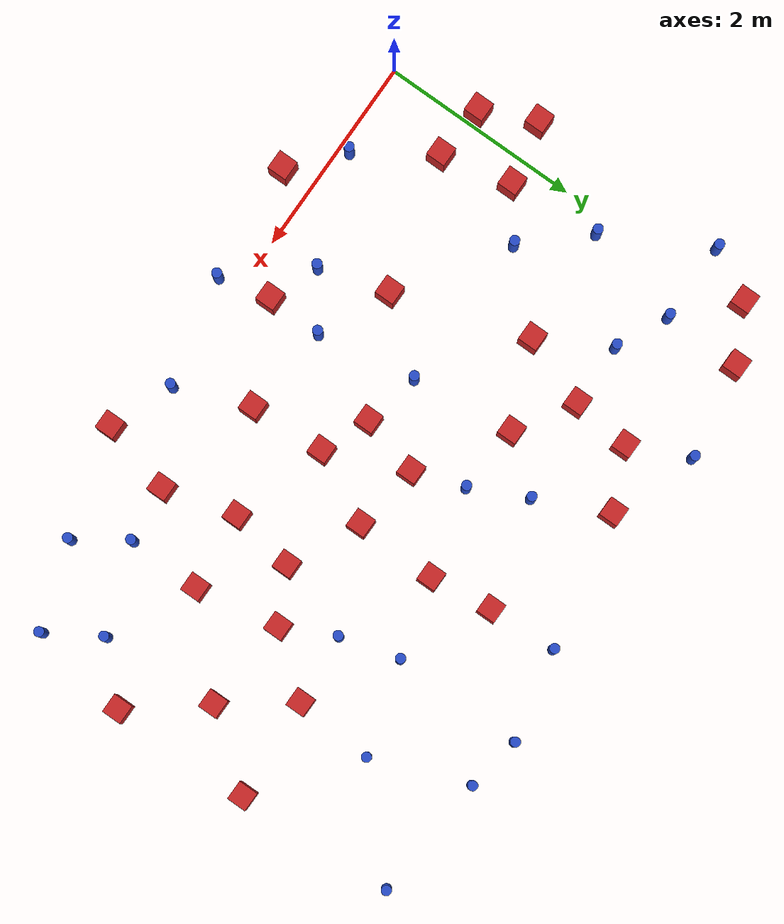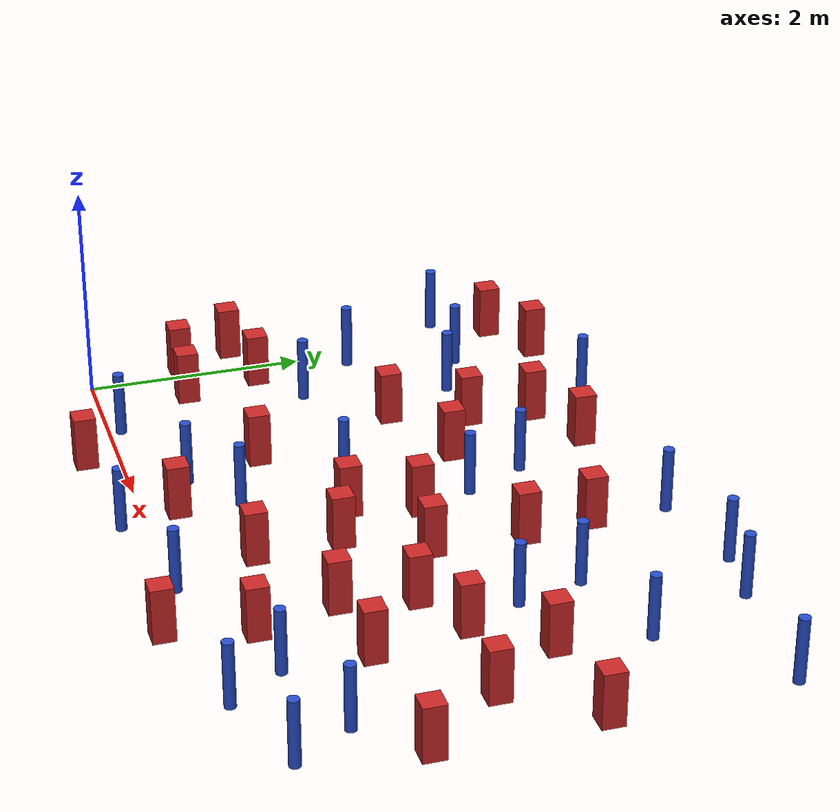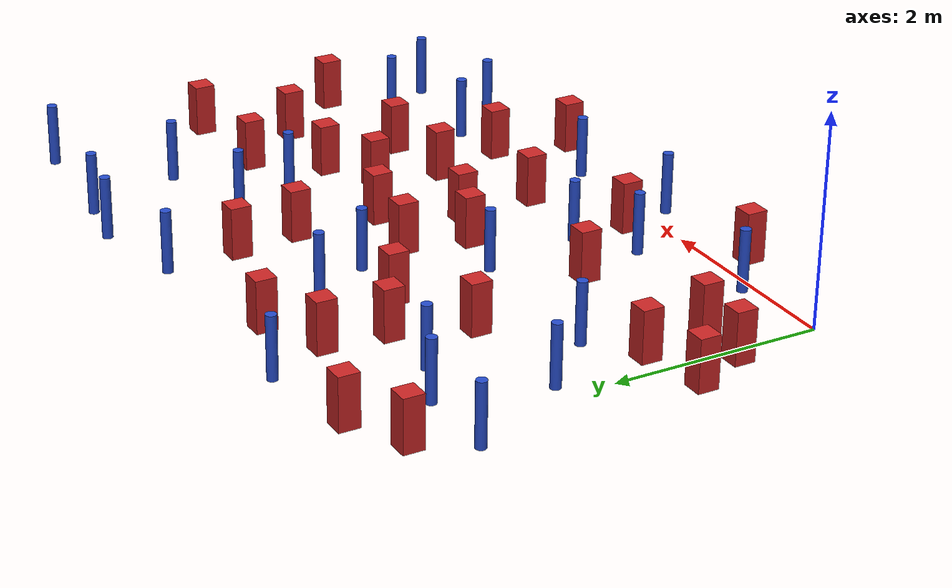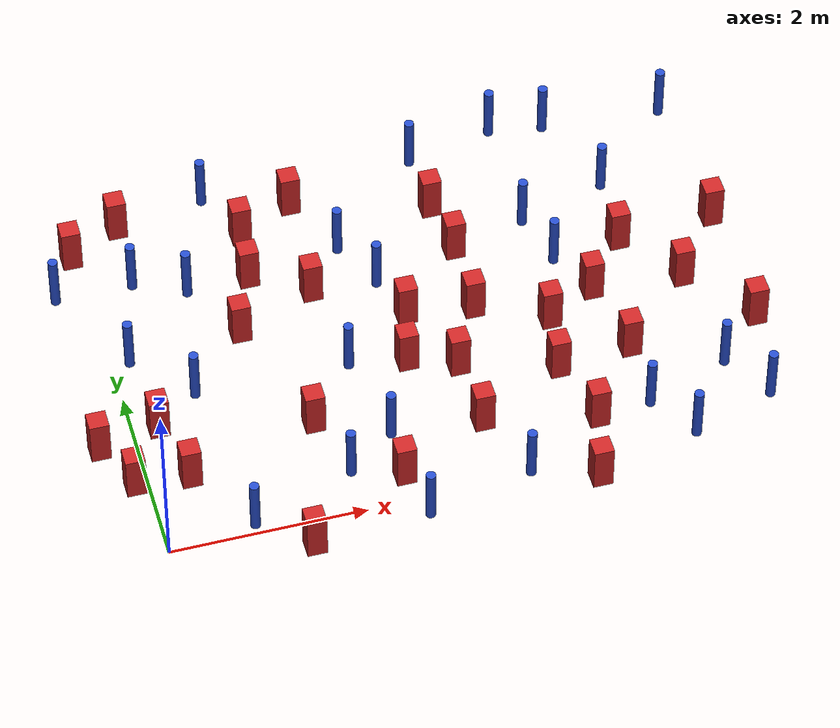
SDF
<sdf version="1.6">
 <model name="dense_4">
  <model name="pole_obstacle5">
   <static>true</static>
   <pose>4.51118579981 3.26232769423 2.88873142074e-08 -9.90536690245e-09 4.6021994898e-07 -1.20965994966e-07</pose>
   <link name="link">
    <pose>0 0 0.3 0 -0 0</pose>
    <inertial>
     <mass>1</mass>
     <inertia><ixx>0.145833</ixx><ixy>0</ixy><ixz>0</ixz><iyy>0.145833</iyy><iyz>0</iyz><izz>0.125</izz></inertia>
    </inertial>
    <collision name="collision">
     <geometry><cylinder><radius>0.05</radius><length>.6</length></cylinder></geometry>
    </collision>
    <visual name="visual">
     <geometry><cylinder><radius>0.05</radius><length>.6</length></cylinder></geometry>
     <material>
      <script><name>Gazebo/Blue</name><uri>file://media/materials/scripts/gazebo.material</uri></script>
     </material>
    </visual>
   </link>
  </model>
  <model name="square_post_obstacle20">
   <static>true</static>
   <pose>5.0686060429 1.31491274557 8.22691968438e-08 7.2212513382e-06 -7.54495500217e-07 2.29674213826e-05</pose>
   <link name="link">
    <pose>0 0 0.25 0 -0 0</pose>
    <inertial>
     <mass>100</mass>
     <inertia>
      <ixx>0.166667</ixx>
      <ixy>0</ixy>
      <ixz>0</ixz>
      <iyy>0.166667</iyy>
      <iyz>0</iyz>
      <izz>0.166667</izz>
     </inertia>
    </inertial>
    <collision name="collision"><geometry><box><size>.2 .2 .5</size></box></geometry></collision>
    <visual name="visual">
     <geometry><box><size>.2 .2 .5</size></box></geometry>
     <material>
      <script><name>Gazebo/Red</name><uri>file://media/materials/scripts/gazebo.material</uri></script>
     </material>
    </visual>
   </link>
  </model>
  <model name="square_post_obstacle23">
   <static>true</static>
   <pose>4.29525000992 -0.212206736863 8.22691968438e-08 7.2212513382e-06 -7.54495500217e-07 2.29674213826e-05</pose>
   <link name="link">
    <pose>0 0 0.25 0 -0 0</pose>
    <inertial>
     <mass>100</mass>
     <inertia>
      <ixx>0.166667</ixx>
      <ixy>0</ixy>
      <ixz>0</ixz>
      <iyy>0.166667</iyy>
      <iyz>0</iyz>
      <izz>0.166667</izz>
     </inertia>
    </inertial>
    <collision name="collision"><geometry><box><size>.2 .2 .5</size></box></geometry></collision>
    <visual name="visual">
     <geometry><box><size>.2 .2 .5</size></box></geometry>
     <material>
      <script><name>Gazebo/Red</name><uri>file://media/materials/scripts/gazebo.material</uri></script>
     </material>
    </visual>
   </link>
  </model>
  <model name="square_post_obstacle29">
   <static>true</static>
   <pose>2.2436271706 4.09614649173 8.22691968438e-08 7.22125133819e-06 -7.54495500217e-07 2.29674213826e-05</pose>
   <link name="link">
    <pose>0 0 0.25 0 -0 0</pose>
    <inertial>
     <mass>100</mass>
     <inertia>
      <ixx>0.166667</ixx>
      <ixy>0</ixy>
      <ixz>0</ixz>
      <iyy>0.166667</iyy>
      <iyz>0</iyz>
      <izz>0.166667</izz>
     </inertia>
    </inertial>
    <collision name="collision"><geometry><box><size>.2 .2 .5</size></box></geometry></collision>
    <visual name="visual">
     <geometry><box><size>.2 .2 .5</size></box></geometry>
     <material>
      <script><name>Gazebo/Red</name><uri>file://media/materials/scripts/gazebo.material</uri></script>
     </material>
    </visual>
   </link>
  </model>
  <model name="square_post_obstacle30">
   <static>true</static>
   <pose>5.85793373275 2.08116270976 8.22691968438e-08 7.2212513382e-06 -7.54495500217e-07 2.29674213826e-05</pose>
   <link name="link">
    <pose>0 0 0.25 0 -0 0</pose>
    <inertial>
     <mass>100</mass>
     <inertia>
      <ixx>0.166667</ixx>
      <ixy>0</ixy>
      <ixz>0</ixz>
      <iyy>0.166667</iyy>
      <iyz>0</iyz>
      <izz>0.166667</izz>
     </inertia>
    </inertial>
    <collision name="collision"><geometry><box><size>.2 .2 .5</size></box></geometry></collision>
    <visual name="visual">
     <geometry><box><size>.2 .2 .5</size></box></geometry>
     <material>
      <script><name>Gazebo/Red</name><uri>file://media/materials/scripts/gazebo.material</uri></script>
     </material>
    </visual>
   </link>
  </model>
  <model name="pole_obstacle26">
   <static>true</static>
   <pose>5.4399115924 3.53323720366 2.88873142074e-08 -9.90536690245e-09 4.6021994898e-07 -1.20965994966e-07</pose>
   <link name="link">
    <pose>0 0 0.3 0 -0 0</pose>
    <inertial>
     <mass>1</mass>
     <inertia><ixx>0.145833</ixx><ixy>0</ixy><ixz>0</ixz><iyy>0.145833</iyy><iyz>0</iyz><izz>0.125</izz></inertia>
    </inertial>
    <collision name="collision">
     <geometry><cylinder><radius>0.05</radius><length>.6</length></cylinder></geometry>
    </collision>
    <visual name="visual">
     <geometry><cylinder><radius>0.05</radius><length>.6</length></cylinder></geometry>
     <material>
      <script><name>Gazebo/Blue</name><uri>file://media/materials/scripts/gazebo.material</uri></script>
     </material>
    </visual>
   </link>
  </model>
  <model name="pole_obstacle30">
   <static>true</static>
   <pose>1.95869227212 0.501764290727 2.88873142074e-08 -9.90536691009e-09 4.60219948961e-07 -1.2096599498e-07</pose>
   <link name="link">
    <pose>0 0 0.3 0 -0 0</pose>
    <inertial>
     <mass>1</mass>
     <inertia><ixx>0.145833</ixx><ixy>0</ixy><ixz>0</ixz><iyy>0.145833</iyy><iyz>0</iyz><izz>0.125</izz></inertia>
    </inertial>
    <collision name="collision">
     <geometry><cylinder><radius>0.05</radius><length>.6</length></cylinder></geometry>
    </collision>
    <visual name="visual">
     <geometry><cylinder><radius>0.05</radius><length>.6</length></cylinder></geometry>
     <material>
      <script><name>Gazebo/Blue</name><uri>file://media/materials/scripts/gazebo.material</uri></script>
     </material>
    </visual>
   </link>
  </model>
  <model name="pole_obstacle44">
   <static>true</static>
   <pose>0.716116815549 1.88164839335 2.88873142074e-08 -9.90536689855e-09 4.60219948989e-07 -1.20965994962e-07</pose>
   <link name="link">
    <pose>0 0 0.3 0 -0 0</pose>
    <inertial>
     <mass>1</mass>
     <inertia><ixx>0.145833</ixx><ixy>0</ixy><ixz>0</ixz><iyy>0.145833</iyy><iyz>0</iyz><izz>0.125</izz></inertia>
    </inertial>
    <collision name="collision">
     <geometry><cylinder><radius>0.05</radius><length>.6</length></cylinder></geometry>
    </collision>
    <visual name="visual">
     <geometry><cylinder><radius>0.05</radius><length>.6</length></cylinder></geometry>
     <material>
      <script><name>Gazebo/Blue</name><uri>file://media/materials/scripts/gazebo.material</uri></script>
     </material>
    </visual>
   </link>
  </model>
  <model name="square_post_obstacle42">
   <static>true</static>
   <pose>3.63920087591 3.68147634943 8.22691968438e-08 7.2212513382e-06 -7.54495500217e-07 2.29674213826e-05</pose>
   <link name="link">
    <pose>0 0 0.25 0 -0 0</pose>
    <inertial>
     <mass>100</mass>
     <inertia>
      <ixx>0.166667</ixx>
      <ixy>0</ixy>
      <ixz>0</ixz>
      <iyy>0.166667</iyy>
      <iyz>0</iyz>
      <izz>0.166667</izz>
     </inertia>
    </inertial>
    <collision name="collision"><geometry><box><size>.2 .2 .5</size></box></geometry></collision>
    <visual name="visual">
     <geometry><box><size>.2 .2 .5</size></box></geometry>
     <material>
      <script><name>Gazebo/Red</name><uri>file://media/materials/scripts/gazebo.material</uri></script>
     </material>
    </visual>
   </link>
  </model>
  <model name="square_post_obstacle46">
   <static>true</static>
   <pose>4.48894644158 0.51475147384 8.22691968438e-08 7.2212513382e-06 -7.54495500217e-07 2.29674213826e-05</pose>
   <link name="link">
    <pose>0 0 0.25 0 -0 0</pose>
    <inertial>
     <mass>100</mass>
     <inertia>
      <ixx>0.166667</ixx>
      <ixy>0</ixy>
      <ixz>0</ixz>
      <iyy>0.166667</iyy>
      <iyz>0</iyz>
      <izz>0.166667</izz>
     </inertia>
    </inertial>
    <collision name="collision"><geometry><box><size>.2 .2 .5</size></box></geometry></collision>
    <visual name="visual">
     <geometry><box><size>.2 .2 .5</size></box></geometry>
     <material>
      <script><name>Gazebo/Red</name><uri>file://media/materials/scripts/gazebo.material</uri></script>
     </material>
    </visual>
   </link>
  </model>
  <model name="pole_obstacle52">
   <static>true</static>
   <pose>5.93323095157 0.895569848175 2.88873142074e-08 -9.90536689837e-09 4.60219948989e-07 -1.2096599496e-07</pose>
   <link name="link">
    <pose>0 0 0.3 0 -0 0</pose>
    <inertial>
     <mass>1</mass>
     <inertia><ixx>0.145833</ixx><ixy>0</ixy><ixz>0</ixz><iyy>0.145833</iyy><iyz>0</iyz><izz>0.125</izz></inertia>
    </inertial>
    <collision name="collision">
     <geometry><cylinder><radius>0.05</radius><length>.6</length></cylinder></geometry>
    </collision>
    <visual name="visual">
     <geometry><cylinder><radius>0.05</radius><length>.6</length></cylinder></geometry>
     <material>
      <script><name>Gazebo/Blue</name><uri>file://media/materials/scripts/gazebo.material</uri></script>
     </material>
    </visual>
   </link>
  </model>
  <model name="square_post_obstacle60">
   <static>true</static>
   <pose>3.37698838711 0.771752956563 8.22691968438e-08 7.2212513382e-06 -7.54495500217e-07 2.29674213826e-05</pose>
   <link name="link">
    <pose>0 0 0.25 0 -0 0</pose>
    <inertial>
     <mass>100</mass>
     <inertia>
      <ixx>0.166667</ixx>
      <ixy>0</ixy>
      <ixz>0</ixz>
      <iyy>0.166667</iyy>
      <iyz>0</iyz>
      <izz>0.166667</izz>
     </inertia>
    </inertial>
    <collision name="collision"><geometry><box><size>.2 .2 .5</size></box></geometry></collision>
    <visual name="visual">
     <geometry><box><size>.2 .2 .5</size></box></geometry>
     <material>
      <script><name>Gazebo/Red</name><uri>file://media/materials/scripts/gazebo.material</uri></script>
     </material>
    </visual>
   </link>
  </model>
  <model name="pole_obstacle56">
   <static>true</static>
   <pose>6.33768137172 4.39520166497 2.88873142074e-08 -9.90536690842e-09 4.60219948965e-07 -1.20965994976e-07</pose>
   <link name="link">
    <pose>0 0 0.3 0 -0 0</pose>
    <inertial>
     <mass>1</mass>
     <inertia><ixx>0.145833</ixx><ixy>0</ixy><ixz>0</ixz><iyy>0.145833</iyy><iyz>0</iyz><izz>0.125</izz></inertia>
    </inertial>
    <collision name="collision">
     <geometry><cylinder><radius>0.05</radius><length>.6</length></cylinder></geometry>
    </collision>
    <visual name="visual">
     <geometry><cylinder><radius>0.05</radius><length>.6</length></cylinder></geometry>
     <material>
      <script><name>Gazebo/Blue</name><uri>file://media/materials/scripts/gazebo.material</uri></script>
     </material>
    </visual>
   </link>
  </model>
  <model name="pole_obstacle58">
   <static>true</static>
   <pose>0.435146856572 3.46067337315 2.88873142074e-08 -9.90536689663e-09 4.60219948993e-07 -1.20965994959e-07</pose>
   <link name="link">
    <pose>0 0 0.3 0 -0 0</pose>
    <inertial>
     <mass>1</mass>
     <inertia><ixx>0.145833</ixx><ixy>0</ixy><ixz>0</ixz><iyy>0.145833</iyy><iyz>0</iyz><izz>0.125</izz></inertia>
    </inertial>
    <collision name="collision">
     <geometry><cylinder><radius>0.05</radius><length>.6</length></cylinder></geometry>
    </collision>
    <visual name="visual">
     <geometry><cylinder><radius>0.05</radius><length>.6</length></cylinder></geometry>
     <material>
      <script><name>Gazebo/Blue</name><uri>file://media/materials/scripts/gazebo.material</uri></script>
     </material>
    </visual>
   </link>
  </model>
  <model name="square_post_obstacle62">
   <static>true</static>
   <pose>-0.0900911200471 3.95353260176 8.22691968438e-08 7.2212513382e-06 -7.54495500217e-07 2.29674213826e-05</pose>
   <link name="link">
    <pose>0 0 0.25 0 -0 0</pose>
    <inertial>
     <mass>100</mass>
     <inertia>
      <ixx>0.166667</ixx>
      <ixy>0</ixy>
      <ixz>0</ixz>
      <iyy>0.166667</iyy>
      <iyz>0</iyz>
      <izz>0.166667</izz>
     </inertia>
    </inertial>
    <collision name="collision"><geometry><box><size>.2 .2 .5</size></box></geometry></collision>
    <visual name="visual">
     <geometry><box><size>.2 .2 .5</size></box></geometry>
     <material>
      <script><name>Gazebo/Red</name><uri>file://media/materials/scripts/gazebo.material</uri></script>
     </material>
    </visual>
   </link>
  </model>
  <model name="square_post_obstacle66">
   <static>true</static>
   <pose>4.40175291672 1.88520417831 8.22691968438e-08 7.2212513382e-06 -7.54495500217e-07 2.29674213826e-05</pose>
   <link name="link">
    <pose>0 0 0.25 0 -0 0</pose>
    <inertial>
     <mass>100</mass>
     <inertia>
      <ixx>0.166667</ixx>
      <ixy>0</ixy>
      <ixz>0</ixz>
      <iyy>0.166667</iyy>
      <iyz>0</iyz>
      <izz>0.166667</izz>
     </inertia>
    </inertial>
    <collision name="collision"><geometry><box><size>.2 .2 .5</size></box></geometry></collision>
    <visual name="visual">
     <geometry><box><size>.2 .2 .5</size></box></geometry>
     <material>
      <script><name>Gazebo/Red</name><uri>file://media/materials/scripts/gazebo.material</uri></script>
     </material>
    </visual>
   </link>
  </model>
  <model name="pole_obstacle65">
   <static>true</static>
   <pose>2.46362555093 0.867232318638 2.88873142074e-08 -9.90536689285e-09 4.60219949002e-07 -1.20965994953e-07</pose>
   <link name="link">
    <pose>0 0 0.3 0 -0 0</pose>
    <inertial>
     <mass>1</mass>
     <inertia><ixx>0.145833</ixx><ixy>0</ixy><ixz>0</ixz><iyy>0.145833</iyy><iyz>0</iyz><izz>0.125</izz></inertia>
    </inertial>
    <collision name="collision">
     <geometry><cylinder><radius>0.05</radius><length>.6</length></cylinder></geometry>
    </collision>
    <visual name="visual">
     <geometry><cylinder><radius>0.05</radius><length>.6</length></cylinder></geometry>
     <material>
      <script><name>Gazebo/Blue</name><uri>file://media/materials/scripts/gazebo.material</uri></script>
     </material>
    </visual>
   </link>
  </model>
  <model name="square_post_obstacle77">
   <static>true</static>
   <pose>2.16669444252 2.87737409979 8.22691968438e-08 7.2212513382e-06 -7.54495500217e-07 2.29674213826e-05</pose>
   <link name="link">
    <pose>0 0 0.25 0 -0 0</pose>
    <inertial>
     <mass>100</mass>
     <inertia>
      <ixx>0.166667</ixx>
      <ixy>0</ixy>
      <ixz>0</ixz>
      <iyy>0.166667</iyy>
      <iyz>0</iyz>
      <izz>0.166667</izz>
     </inertia>
    </inertial>
    <collision name="collision"><geometry><box><size>.2 .2 .5</size></box></geometry></collision>
    <visual name="visual">
     <geometry><box><size>.2 .2 .5</size></box></geometry>
     <material>
      <script><name>Gazebo/Red</name><uri>file://media/materials/scripts/gazebo.material</uri></script>
     </material>
    </visual>
   </link>
  </model>
  <model name="square_post_obstacle78">
   <static>true</static>
   <pose>3.33992693477 1.53138632967 8.22691968438e-08 7.2212513382e-06 -7.54495500217e-07 2.29674213826e-05</pose>
   <link name="link">
    <pose>0 0 0.25 0 -0 0</pose>
    <inertial>
     <mass>100</mass>
     <inertia>
      <ixx>0.166667</ixx>
      <ixy>0</ixy>
      <ixz>0</ixz>
      <iyy>0.166667</iyy>
      <iyz>0</iyz>
      <izz>0.166667</izz>
     </inertia>
    </inertial>
    <collision name="collision"><geometry><box><size>.2 .2 .5</size></box></geometry></collision>
    <visual name="visual">
     <geometry><box><size>.2 .2 .5</size></box></geometry>
     <material>
      <script><name>Gazebo/Red</name><uri>file://media/materials/scripts/gazebo.material</uri></script>
     </material>
    </visual>
   </link>
  </model>
  <model name="pole_obstacle92">
   <static>true</static>
   <pose>1.38772694952 4.41125062074 2.88873142074e-08 -9.90536689852e-09 4.60219948989e-07 -1.2096599496e-07</pose>
   <link name="link">
    <pose>0 0 0.3 0 -0 0</pose>
    <inertial>
     <mass>1</mass>
     <inertia><ixx>0.145833</ixx><ixy>0</ixy><ixz>0</ixz><iyy>0.145833</iyy><iyz>0</iyz><izz>0.125</izz></inertia>
    </inertial>
    <collision name="collision">
     <geometry><cylinder><radius>0.05</radius><length>.6</length></cylinder></geometry>
    </collision>
    <visual name="visual">
     <geometry><cylinder><radius>0.05</radius><length>.6</length></cylinder></geometry>
     <material>
      <script><name>Gazebo/Blue</name><uri>file://media/materials/scripts/gazebo.material</uri></script>
     </material>
    </visual>
   </link>
  </model>
  <model name="pole_obstacle94">
   <static>true</static>
   <pose>-0.360778436701 3.46122472927 2.88873142074e-08 -9.90536689663e-09 4.60219948993e-07 -1.20965994959e-07</pose>
   <link name="link">
    <pose>0 0 0.3 0 -0 0</pose>
    <inertial>
     <mass>1</mass>
     <inertia><ixx>0.145833</ixx><ixy>0</ixy><ixz>0</ixz><iyy>0.145833</iyy><iyz>0</iyz><izz>0.125</izz></inertia>
    </inertial>
    <collision name="collision">
     <geometry><cylinder><radius>0.05</radius><length>.6</length></cylinder></geometry>
    </collision>
    <visual name="visual">
     <geometry><cylinder><radius>0.05</radius><length>.6</length></cylinder></geometry>
     <material>
      <script><name>Gazebo/Blue</name><uri>file://media/materials/scripts/gazebo.material</uri></script>
     </material>
    </visual>
   </link>
  </model>
  <model name="square_post_obstacle91">
   <static>true</static>
   <pose>3.71915476604 3.05379048572 8.22691968438e-08 7.2212513382e-06 -7.54495500217e-07 2.29674213826e-05</pose>
   <link name="link">
    <pose>0 0 0.25 0 -0 0</pose>
    <inertial>
     <mass>100</mass>
     <inertia>
      <ixx>0.166667</ixx>
      <ixy>0</ixy>
      <ixz>0</ixz>
      <iyy>0.166667</iyy>
      <iyz>0</iyz>
      <izz>0.166667</izz>
     </inertia>
    </inertial>
    <collision name="collision"><geometry><box><size>.2 .2 .5</size></box></geometry></collision>
    <visual name="visual">
     <geometry><box><size>.2 .2 .5</size></box></geometry>
     <material>
      <script><name>Gazebo/Red</name><uri>file://media/materials/scripts/gazebo.material</uri></script>
     </material>
    </visual>
   </link>
  </model>
  <model name="square_post_obstacle94">
   <static>true</static>
   <pose>-0.368737485868 1.40508767938 8.22691968438e-08 7.2212513382e-06 -7.54495500217e-07 2.29674213826e-05</pose>
   <link name="link">
    <pose>0 0 0.25 0 -0 0</pose>
    <inertial>
     <mass>100</mass>
     <inertia>
      <ixx>0.166667</ixx>
      <ixy>0</ixy>
      <ixz>0</ixz>
      <iyy>0.166667</iyy>
      <iyz>0</iyz>
      <izz>0.166667</izz>
     </inertia>
    </inertial>
    <collision name="collision"><geometry><box><size>.2 .2 .5</size></box></geometry></collision>
    <visual name="visual">
     <geometry><box><size>.2 .2 .5</size></box></geometry>
     <material>
      <script><name>Gazebo/Red</name><uri>file://media/materials/scripts/gazebo.material</uri></script>
     </material>
    </visual>
   </link>
  </model>
  <model name="square_post_obstacle97">
   <static>true</static>
   <pose>0.417339086161 0.831775372555 8.22691968438e-08 7.2212513382e-06 -7.54495500217e-07 2.29674213826e-05</pose>
   <link name="link">
    <pose>0 0 0.25 0 -0 0</pose>
    <inertial>
     <mass>100</mass>
     <inertia>
      <ixx>0.166667</ixx>
      <ixy>0</ixy>
      <ixz>0</ixz>
      <iyy>0.166667</iyy>
      <iyz>0</iyz>
      <izz>0.166667</izz>
     </inertia>
    </inertial>
    <collision name="collision"><geometry><box><size>.2 .2 .5</size></box></geometry></collision>
    <visual name="visual">
     <geometry><box><size>.2 .2 .5</size></box></geometry>
     <material>
      <script><name>Gazebo/Red</name><uri>file://media/materials/scripts/gazebo.material</uri></script>
     </material>
    </visual>
   </link>
  </model>
  <model name="pole_obstacle110">
   <static>true</static>
   <pose>2.56881631653 -0.211027741568 2.88873142074e-08 -9.90536692243e-09 4.60219948932e-07 -1.20965994987e-07</pose>
   <link name="link">
    <pose>0 0 0.3 0 -0 0</pose>
    <inertial>
     <mass>1</mass>
     <inertia><ixx>0.145833</ixx><ixy>0</ixy><ixz>0</ixz><iyy>0.145833</iyy><iyz>0</iyz><izz>0.125</izz></inertia>
    </inertial>
    <collision name="collision">
     <geometry><cylinder><radius>0.05</radius><length>.6</length></cylinder></geometry>
    </collision>
    <visual name="visual">
     <geometry><cylinder><radius>0.05</radius><length>.6</length></cylinder></geometry>
     <material>
      <script><name>Gazebo/Blue</name><uri>file://media/materials/scripts/gazebo.material</uri></script>
     </material>
    </visual>
   </link>
  </model>
  <model name="pole_obstacle120">
   <static>true</static>
   <pose>2.84354620878 2.83544422388 2.88873142074e-08 -9.90536690232e-09 4.6021994898e-07 -1.20965994968e-07</pose>
   <link name="link">
    <pose>0 0 0.3 0 -0 0</pose>
    <inertial>
     <mass>1</mass>
     <inertia><ixx>0.145833</ixx><ixy>0</ixy><ixz>0</ixz><iyy>0.145833</iyy><iyz>0</iyz><izz>0.125</izz></inertia>
    </inertial>
    <collision name="collision">
     <geometry><cylinder><radius>0.05</radius><length>.6</length></cylinder></geometry>
    </collision>
    <visual name="visual">
     <geometry><cylinder><radius>0.05</radius><length>.6</length></cylinder></geometry>
     <material>
      <script><name>Gazebo/Blue</name><uri>file://media/materials/scripts/gazebo.material</uri></script>
     </material>
    </visual>
   </link>
  </model>
  <model name="pole_obstacle121">
   <static>true</static>
   <pose>5.38386186313 0.0893494037501 2.88873142074e-08 -9.90536689727e-09 4.60219948992e-07 -1.20965994958e-07</pose>
   <link name="link">
    <pose>0 0 0.3 0 -0 0</pose>
    <inertial>
     <mass>1</mass>
     <inertia><ixx>0.145833</ixx><ixy>0</ixy><ixz>0</ixz><iyy>0.145833</iyy><iyz>0</iyz><izz>0.125</izz></inertia>
    </inertial>
    <collision name="collision">
     <geometry><cylinder><radius>0.05</radius><length>.6</length></cylinder></geometry>
    </collision>
    <visual name="visual">
     <geometry><cylinder><radius>0.05</radius><length>.6</length></cylinder></geometry>
     <material>
      <script><name>Gazebo/Blue</name><uri>file://media/materials/scripts/gazebo.material</uri></script>
     </material>
    </visual>
   </link>
  </model>
  <model name="pole_obstacle129">
   <static>true</static>
   <pose>0.891008049981 0.110860070266 2.88873142074e-08 -9.90536689567e-09 4.60219948996e-07 -1.20965994956e-07</pose>
   <link name="link">
    <pose>0 0 0.3 0 -0 0</pose>
    <inertial>
     <mass>1</mass>
     <inertia><ixx>0.145833</ixx><ixy>0</ixy><ixz>0</ixz><iyy>0.145833</iyy><iyz>0</iyz><izz>0.125</izz></inertia>
    </inertial>
    <collision name="collision">
     <geometry><cylinder><radius>0.05</radius><length>.6</length></cylinder></geometry>
    </collision>
    <visual name="visual">
     <geometry><cylinder><radius>0.05</radius><length>.6</length></cylinder></geometry>
     <material>
      <script><name>Gazebo/Blue</name><uri>file://media/materials/scripts/gazebo.material</uri></script>
     </material>
    </visual>
   </link>
  </model>
  <model name="square_post_obstacle117">
   <static>true</static>
   <pose>1.33909130834 2.53308561445 8.22691968438e-08 7.2212513382e-06 -7.54495500217e-07 2.29674213826e-05</pose>
   <link name="link">
    <pose>0 0 0.25 0 -0 0</pose>
    <inertial>
     <mass>100</mass>
     <inertia>
      <ixx>0.166667</ixx>
      <ixy>0</ixy>
      <ixz>0</ixz>
      <iyy>0.166667</iyy>
      <iyz>0</iyz>
      <izz>0.166667</izz>
     </inertia>
    </inertial>
    <collision name="collision"><geometry><box><size>.2 .2 .5</size></box></geometry></collision>
    <visual name="visual">
     <geometry><box><size>.2 .2 .5</size></box></geometry>
     <material>
      <script><name>Gazebo/Red</name><uri>file://media/materials/scripts/gazebo.material</uri></script>
     </material>
    </visual>
   </link>
  </model>
  <model name="pole_obstacle136">
   <static>true</static>
   <pose>5.05675831988 0.576966402563 2.88873142074e-08 -9.90536689837e-09 4.60219948989e-07 -1.2096599496e-07</pose>
   <link name="link">
    <pose>0 0 0.3 0 -0 0</pose>
    <inertial>
     <mass>1</mass>
     <inertia><ixx>0.145833</ixx><ixy>0</ixy><ixz>0</ixz><iyy>0.145833</iyy><iyz>0</iyz><izz>0.125</izz></inertia>
    </inertial>
    <collision name="collision">
     <geometry><cylinder><radius>0.05</radius><length>.6</length></cylinder></geometry>
    </collision>
    <visual name="visual">
     <geometry><cylinder><radius>0.05</radius><length>.6</length></cylinder></geometry>
     <material>
      <script><name>Gazebo/Blue</name><uri>file://media/materials/scripts/gazebo.material</uri></script>
     </material>
    </visual>
   </link>
  </model>
  <model name="square_post_obstacle125">
   <static>true</static>
   <pose>6.39974700157 2.79981422828 8.22691968438e-08 7.2212513382e-06 -7.54495500217e-07 2.29674213826e-05</pose>
   <link name="link">
    <pose>0 0 0.25 0 -0 0</pose>
    <inertial>
     <mass>100</mass>
     <inertia>
      <ixx>0.166667</ixx>
      <ixy>0</ixy>
      <ixz>0</ixz>
      <iyy>0.166667</iyy>
      <iyz>0</iyz>
      <izz>0.166667</izz>
     </inertia>
    </inertial>
    <collision name="collision"><geometry><box><size>.2 .2 .5</size></box></geometry></collision>
    <visual name="visual">
     <geometry><box><size>.2 .2 .5</size></box></geometry>
     <material>
      <script><name>Gazebo/Red</name><uri>file://media/materials/scripts/gazebo.material</uri></script>
     </material>
    </visual>
   </link>
  </model>
  <model name="pole_obstacle140">
   <static>true</static>
   <pose>4.52779403499 4.57926630098 2.88873142074e-08 -9.90536690842e-09 4.60219948965e-07 -1.20965994976e-07</pose>
   <link name="link">
    <pose>0 0 0.3 0 -0 0</pose>
    <inertial>
     <mass>1</mass>
     <inertia><ixx>0.145833</ixx><ixy>0</ixy><ixz>0</ixz><iyy>0.145833</iyy><iyz>0</iyz><izz>0.125</izz></inertia>
    </inertial>
    <collision name="collision">
     <geometry><cylinder><radius>0.05</radius><length>.6</length></cylinder></geometry>
    </collision>
    <visual name="visual">
     <geometry><cylinder><radius>0.05</radius><length>.6</length></cylinder></geometry>
     <material>
      <script><name>Gazebo/Blue</name><uri>file://media/materials/scripts/gazebo.material</uri></script>
     </material>
    </visual>
   </link>
  </model>
  <model name="square_post_obstacle131">
   <static>true</static>
   <pose>3.01463073073 2.3261112437 8.22691968438e-08 7.2212513382e-06 -7.54495500217e-07 2.29674213826e-05</pose>
   <link name="link">
    <pose>0 0 0.25 0 -0 0</pose>
    <inertial>
     <mass>100</mass>
     <inertia>
      <ixx>0.166667</ixx>
      <ixy>0</ixy>
      <ixz>0</ixz>
      <iyy>0.166667</iyy>
      <iyz>0</iyz>
      <izz>0.166667</izz>
     </inertia>
    </inertial>
    <collision name="collision"><geometry><box><size>.2 .2 .5</size></box></geometry></collision>
    <visual name="visual">
     <geometry><box><size>.2 .2 .5</size></box></geometry>
     <material>
      <script><name>Gazebo/Red</name><uri>file://media/materials/scripts/gazebo.material</uri></script>
     </material>
    </visual>
   </link>
  </model>
  <model name="square_post_obstacle132">
   <static>true</static>
   <pose>0.446692911825 4.23693979107 8.22691968438e-08 7.2212513382e-06 -7.54495500217e-07 2.29674213826e-05</pose>
   <link name="link">
    <pose>0 0 0.25 0 -0 0</pose>
    <inertial>
     <mass>100</mass>
     <inertia>
      <ixx>0.166667</ixx>
      <ixy>0</ixy>
      <ixz>0</ixz>
      <iyy>0.166667</iyy>
      <iyz>0</iyz>
      <izz>0.166667</izz>
     </inertia>
    </inertial>
    <collision name="collision"><geometry><box><size>.2 .2 .5</size></box></geometry></collision>
    <visual name="visual">
     <geometry><box><size>.2 .2 .5</size></box></geometry>
     <material>
      <script><name>Gazebo/Red</name><uri>file://media/materials/scripts/gazebo.material</uri></script>
     </material>
    </visual>
   </link>
  </model>
  <model name="square_post_obstacle135">
   <static>true</static>
   <pose>-0.129718024208 0.877156262457 8.22691968438e-08 7.2212513382e-06 -7.54495500217e-07 2.29674213826e-05</pose>
   <link name="link">
    <pose>0 0 0.25 0 -0 0</pose>
    <inertial>
     <mass>100</mass>
     <inertia>
      <ixx>0.166667</ixx>
      <ixy>0</ixy>
      <ixz>0</ixz>
      <iyy>0.166667</iyy>
      <iyz>0</iyz>
      <izz>0.166667</izz>
     </inertia>
    </inertial>
    <collision name="collision"><geometry><box><size>.2 .2 .5</size></box></geometry></collision>
    <visual name="visual">
     <geometry><box><size>.2 .2 .5</size></box></geometry>
     <material>
      <script><name>Gazebo/Red</name><uri>file://media/materials/scripts/gazebo.material</uri></script>
     </material>
    </visual>
   </link>
  </model>
  <model name="pole_obstacle146">
   <static>true</static>
   <pose>2.57611843783 3.39013336612 2.88873142074e-08 -9.90536690232e-09 4.6021994898e-07 -1.20965994968e-07</pose>
   <link name="link">
    <pose>0 0 0.3 0 -0 0</pose>
    <inertial>
     <mass>1</mass>
     <inertia><ixx>0.145833</ixx><ixy>0</ixy><ixz>0</ixz><iyy>0.145833</iyy><iyz>0</iyz><izz>0.125</izz></inertia>
    </inertial>
    <collision name="collision">
     <geometry><cylinder><radius>0.05</radius><length>.6</length></cylinder></geometry>
    </collision>
    <visual name="visual">
     <geometry><cylinder><radius>0.05</radius><length>.6</length></cylinder></geometry>
     <material>
      <script><name>Gazebo/Blue</name><uri>file://media/materials/scripts/gazebo.material</uri></script>
     </material>
    </visual>
   </link>
  </model>
  <model name="pole_obstacle148">
   <static>true</static>
   <pose>3.66133573947 0.0350118903744 2.88873142074e-08 -9.905366921e-09 4.60219948936e-07 -1.20965994985e-07</pose>
   <link name="link">
    <pose>0 0 0.3 0 -0 0</pose>
    <inertial>
     <mass>1</mass>
     <inertia><ixx>0.145833</ixx><ixy>0</ixy><ixz>0</ixz><iyy>0.145833</iyy><iyz>0</iyz><izz>0.125</izz></inertia>
    </inertial>
    <collision name="collision">
     <geometry><cylinder><radius>0.05</radius><length>.6</length></cylinder></geometry>
    </collision>
    <visual name="visual">
     <geometry><cylinder><radius>0.05</radius><length>.6</length></cylinder></geometry>
     <material>
      <script><name>Gazebo/Blue</name><uri>file://media/materials/scripts/gazebo.material</uri></script>
     </material>
    </visual>
   </link>
  </model>
  <model name="square_post_obstacle138">
   <static>true</static>
   <pose>1.75637979743 1.18982616612 8.22691968438e-08 7.2212513382e-06 -7.54495500217e-07 2.29674213826e-05</pose>
   <link name="link">
    <pose>0 0 0.25 0 -0 0</pose>
    <inertial>
     <mass>100</mass>
     <inertia>
      <ixx>0.166667</ixx>
      <ixy>0</ixy>
      <ixz>0</ixz>
      <iyy>0.166667</iyy>
      <iyz>0</iyz>
      <izz>0.166667</izz>
     </inertia>
    </inertial>
    <collision name="collision"><geometry><box><size>.2 .2 .5</size></box></geometry></collision>
    <visual name="visual">
     <geometry><box><size>.2 .2 .5</size></box></geometry>
     <material>
      <script><name>Gazebo/Red</name><uri>file://media/materials/scripts/gazebo.material</uri></script>
     </material>
    </visual>
   </link>
  </model>
  <model name="square_post_obstacle149">
   <static>true</static>
   <pose>1.65896673007 3.82186584765 8.22691968438e-08 7.2212513382e-06 -7.54495500217e-07 2.29674213826e-05</pose>
   <link name="link">
    <pose>0 0 0.25 0 -0 0</pose>
    <inertial>
     <mass>100</mass>
     <inertia>
      <ixx>0.166667</ixx>
      <ixy>0</ixy>
      <ixz>0</ixz>
      <iyy>0.166667</iyy>
      <iyz>0</iyz>
      <izz>0.166667</izz>
     </inertia>
    </inertial>
    <collision name="collision"><geometry><box><size>.2 .2 .5</size></box></geometry></collision>
    <visual name="visual">
     <geometry><box><size>.2 .2 .5</size></box></geometry>
     <material>
      <script><name>Gazebo/Red</name><uri>file://media/materials/scripts/gazebo.material</uri></script>
     </material>
    </visual>
   </link>
  </model>
  <model name="square_post_obstacle154">
   <static>true</static>
   <pose>2.44979259231 0.310718138111 8.22691968438e-08 7.2212513382e-06 -7.54495500217e-07 2.29674213826e-05</pose>
   <link name="link">
    <pose>0 0 0.25 0 -0 0</pose>
    <inertial>
     <mass>100</mass>
     <inertia>
      <ixx>0.166667</ixx>
      <ixy>0</ixy>
      <ixz>0</ixz>
      <iyy>0.166667</iyy>
      <iyz>0</iyz>
      <izz>0.166667</izz>
     </inertia>
    </inertial>
    <collision name="collision"><geometry><box><size>.2 .2 .5</size></box></geometry></collision>
    <visual name="visual">
     <geometry><box><size>.2 .2 .5</size></box></geometry>
     <material>
      <script><name>Gazebo/Red</name><uri>file://media/materials/scripts/gazebo.material</uri></script>
     </material>
    </visual>
   </link>
  </model>
  <model name="square_post_obstacle156">
   <static>true</static>
   <pose>3.69256095524 2.22914644534 8.22691968438e-08 7.2212513382e-06 -7.54495500217e-07 2.29674213826e-05</pose>
   <link name="link">
    <pose>0 0 0.25 0 -0 0</pose>
    <inertial>
     <mass>100</mass>
     <inertia>
      <ixx>0.166667</ixx>
      <ixy>0</ixy>
      <ixz>0</ixz>
      <iyy>0.166667</iyy>
      <iyz>0</iyz>
      <izz>0.166667</izz>
     </inertia>
    </inertial>
    <collision name="collision"><geometry><box><size>.2 .2 .5</size></box></geometry></collision>
    <visual name="visual">
     <geometry><box><size>.2 .2 .5</size></box></geometry>
     <material>
      <script><name>Gazebo/Red</name><uri>file://media/materials/scripts/gazebo.material</uri></script>
     </material>
    </visual>
   </link>
  </model>
  <model name="pole_obstacle166">
   <static>true</static>
   <pose>0.17752635395 2.45416370281 2.88873142074e-08 -9.90536689569e-09 4.60219948995e-07 -1.20965994955e-07</pose>
   <link name="link">
    <pose>0 0 0.3 0 -0 0</pose>
    <inertial>
     <mass>1</mass>
     <inertia><ixx>0.145833</ixx><ixy>0</ixy><ixz>0</ixz><iyy>0.145833</iyy><iyz>0</iyz><izz>0.125</izz></inertia>
    </inertial>
    <collision name="collision">
     <geometry><cylinder><radius>0.05</radius><length>.6</length></cylinder></geometry>
    </collision>
    <visual name="visual">
     <geometry><cylinder><radius>0.05</radius><length>.6</length></cylinder></geometry>
     <material>
      <script><name>Gazebo/Blue</name><uri>file://media/materials/scripts/gazebo.material</uri></script>
     </material>
    </visual>
   </link>
  </model>
  <model name="square_post_obstacle167">
   <static>true</static>
   <pose>5.37731935531 2.73596172315 8.22691968438e-08 7.2212513382e-06 -7.54495500217e-07 2.29674213826e-05</pose>
   <link name="link">
    <pose>0 0 0.25 0 -0 0</pose>
    <inertial>
     <mass>100</mass>
     <inertia>
      <ixx>0.166667</ixx>
      <ixy>0</ixy>
      <ixz>0</ixz>
      <iyy>0.166667</iyy>
      <iyz>0</iyz>
      <izz>0.166667</izz>
     </inertia>
    </inertial>
    <collision name="collision"><geometry><box><size>.2 .2 .5</size></box></geometry></collision>
    <visual name="visual">
     <geometry><box><size>.2 .2 .5</size></box></geometry>
     <material>
      <script><name>Gazebo/Red</name><uri>file://media/materials/scripts/gazebo.material</uri></script>
     </material>
    </visual>
   </link>
  </model>
  <model name="square_post_obstacle169">
   <static>true</static>
   <pose>6.41238482958 1.38230210569 8.22691968438e-08 7.2212513382e-06 -7.54495500217e-07 2.29674213826e-05</pose>
   <link name="link">
    <pose>0 0 0.25 0 -0 0</pose>
    <inertial>
     <mass>100</mass>
     <inertia>
      <ixx>0.166667</ixx>
      <ixy>0</ixy>
      <ixz>0</ixz>
      <iyy>0.166667</iyy>
      <iyz>0</iyz>
      <izz>0.166667</izz>
     </inertia>
    </inertial>
    <collision name="collision"><geometry><box><size>.2 .2 .5</size></box></geometry></collision>
    <visual name="visual">
     <geometry><box><size>.2 .2 .5</size></box></geometry>
     <material>
      <script><name>Gazebo/Red</name><uri>file://media/materials/scripts/gazebo.material</uri></script>
     </material>
    </visual>
   </link>
  </model>
  <model name="pole_obstacle181">
   <static>true</static>
   <pose>3.60951223226 4.3780112034 2.88873142074e-08 -9.90536689859e-09 4.60219948989e-07 -1.20965994961e-07</pose>
   <link name="link">
    <pose>0 0 0.3 0 -0 0</pose>
    <inertial>
     <mass>1</mass>
     <inertia><ixx>0.145833</ixx><ixy>0</ixy><ixz>0</ixz><iyy>0.145833</iyy><iyz>0</iyz><izz>0.125</izz></inertia>
    </inertial>
    <collision name="collision">
     <geometry><cylinder><radius>0.05</radius><length>.6</length></cylinder></geometry>
    </collision>
    <visual name="visual">
     <geometry><cylinder><radius>0.05</radius><length>.6</length></cylinder></geometry>
     <material>
      <script><name>Gazebo/Blue</name><uri>file://media/materials/scripts/gazebo.material</uri></script>
     </material>
    </visual>
   </link>
  </model>
  <model name="pole_obstacle183">
   <static>true</static>
   <pose>6.24775035731 0.37948895148 2.88873142074e-08 -9.90536689981e-09 4.60219948986e-07 -1.20965994962e-07</pose>
   <link name="link">
    <pose>0 0 0.3 0 -0 0</pose>
    <inertial>
     <mass>1</mass>
     <inertia><ixx>0.145833</ixx><ixy>0</ixy><ixz>0</ixz><iyy>0.145833</iyy><iyz>0</iyz><izz>0.125</izz></inertia>
    </inertial>
    <collision name="collision">
     <geometry><cylinder><radius>0.05</radius><length>.6</length></cylinder></geometry>
    </collision>
    <visual name="visual">
     <geometry><cylinder><radius>0.05</radius><length>.6</length></cylinder></geometry>
     <material>
      <script><name>Gazebo/Blue</name><uri>file://media/materials/scripts/gazebo.material</uri></script>
     </material>
    </visual>
   </link>
  </model>
  <model name="square_post_obstacle178">
   <static>true</static>
   <pose>4.29655881862 1.23748709382 8.22691968438e-08 7.2212513382e-06 -7.54495500217e-07 2.29674213826e-05</pose>
   <link name="link">
    <pose>0 0 0.25 0 -0 0</pose>
    <inertial>
     <mass>100</mass>
     <inertia>
      <ixx>0.166667</ixx>
      <ixy>0</ixy>
      <ixz>0</ixz>
      <iyy>0.166667</iyy>
      <iyz>0</iyz>
      <izz>0.166667</izz>
     </inertia>
    </inertial>
    <collision name="collision"><geometry><box><size>.2 .2 .5</size></box></geometry></collision>
    <visual name="visual">
     <geometry><box><size>.2 .2 .5</size></box></geometry>
     <material>
      <script><name>Gazebo/Red</name><uri>file://media/materials/scripts/gazebo.material</uri></script>
     </material>
    </visual>
   </link>
  </model>
  <model name="square_post_obstacle189">
   <static>true</static>
   <pose>0.257484584776 1.53533499212 8.22691968438e-08 7.2212513382e-06 -7.54495500217e-07 2.29674213826e-05</pose>
   <link name="link">
    <pose>0 0 0.25 0 -0 0</pose>
    <inertial>
     <mass>100</mass>
     <inertia>
      <ixx>0.166667</ixx>
      <ixy>0</ixy>
      <ixz>0</ixz>
      <iyy>0.166667</iyy>
      <iyz>0</iyz>
      <izz>0.166667</izz>
     </inertia>
    </inertial>
    <collision name="collision"><geometry><box><size>.2 .2 .5</size></box></geometry></collision>
    <visual name="visual">
     <geometry><box><size>.2 .2 .5</size></box></geometry>
     <material>
      <script><name>Gazebo/Red</name><uri>file://media/materials/scripts/gazebo.material</uri></script>
     </material>
    </visual>
   </link>
  </model>
  <model name="pole_obstacle197">
   <static>true</static>
   <pose>5.08666304575 4.48925991454 2.88873142074e-08 -9.90536690842e-09 4.60219948965e-07 -1.20965994976e-07</pose>
   <link name="link">
    <pose>0 0 0.3 0 -0 0</pose>
    <inertial>
     <mass>1</mass>
     <inertia><ixx>0.145833</ixx><ixy>0</ixy><ixz>0</ixz><iyy>0.145833</iyy><iyz>0</iyz><izz>0.125</izz></inertia>
    </inertial>
    <collision name="collision">
     <geometry><cylinder><radius>0.05</radius><length>.6</length></cylinder></geometry>
    </collision>
    <visual name="visual">
     <geometry><cylinder><radius>0.05</radius><length>.6</length></cylinder></geometry>
     <material>
      <script><name>Gazebo/Blue</name><uri>file://media/materials/scripts/gazebo.material</uri></script>
     </material>
    </visual>
   </link>
  </model>
  <model name="pole_obstacle198">
   <static>true</static>
   <pose>4.67246720882 2.66709831216 2.88873142074e-08 -9.90536690245e-09 4.6021994898e-07 -1.20965994966e-07</pose>
   <link name="link">
    <pose>0 0 0.3 0 -0 0</pose>
    <inertial>
     <mass>1</mass>
     <inertia><ixx>0.145833</ixx><ixy>0</ixy><ixz>0</ixz><iyy>0.145833</iyy><iyz>0</iyz><izz>0.125</izz></inertia>
    </inertial>
    <collision name="collision">
     <geometry><cylinder><radius>0.05</radius><length>.6</length></cylinder></geometry>
    </collision>
    <visual name="visual">
     <geometry><cylinder><radius>0.05</radius><length>.6</length></cylinder></geometry>
     <material>
      <script><name>Gazebo/Blue</name><uri>file://media/materials/scripts/gazebo.material</uri></script>
     </material>
    </visual>
   </link>
  </model>
  <model name="pole_obstacle211">
   <static>true</static>
   <pose>0.954199549436 3.21919337304 2.88873142074e-08 -9.90536689802e-09 4.6021994899e-07 -1.2096599496e-07</pose>
   <link name="link">
    <pose>0 0 0.3 0 -0 0</pose>
    <inertial>
     <mass>1</mass>
     <inertia><ixx>0.145833</ixx><ixy>0</ixy><ixz>0</ixz><iyy>0.145833</iyy><iyz>0</iyz><izz>0.125</izz></inertia>
    </inertial>
    <collision name="collision">
     <geometry><cylinder><radius>0.05</radius><length>.6</length></cylinder></geometry>
    </collision>
    <visual name="visual">
     <geometry><cylinder><radius>0.05</radius><length>.6</length></cylinder></geometry>
     <material>
      <script><name>Gazebo/Blue</name><uri>file://media/materials/scripts/gazebo.material</uri></script>
     </material>
    </visual>
   </link>
  </model>
  <model name="pole_obstacle220">
   <static>true</static>
   <pose>2.2898021089 1.84760955427 2.88873142074e-08 -9.90536689395e-09 4.60219949e-07 -1.20965994953e-07</pose>
   <link name="link">
    <pose>0 0 0.3 0 -0 0</pose>
    <inertial>
     <mass>1</mass>
     <inertia><ixx>0.145833</ixx><ixy>0</ixy><ixz>0</ixz><iyy>0.145833</iyy><iyz>0</iyz><izz>0.125</izz></inertia>
    </inertial>
    <collision name="collision">
     <geometry><cylinder><radius>0.05</radius><length>.6</length></cylinder></geometry>
    </collision>
    <visual name="visual">
     <geometry><cylinder><radius>0.05</radius><length>.6</length></cylinder></geometry>
     <material>
      <script><name>Gazebo/Blue</name><uri>file://media/materials/scripts/gazebo.material</uri></script>
     </material>
    </visual>
   </link>
  </model>
  <model name="square_post_obstacle206">
   <static>true</static>
   <pose>4.92125003262 2.15528996466 8.22691968438e-08 7.2212513382e-06 -7.54495500217e-07 2.29674213826e-05</pose>
   <link name="link">
    <pose>0 0 0.25 0 -0 0</pose>
    <inertial>
     <mass>100</mass>
     <inertia>
      <ixx>0.166667</ixx>
      <ixy>0</ixy>
      <ixz>0</ixz>
      <iyy>0.166667</iyy>
      <iyz>0</iyz>
      <izz>0.166667</izz>
     </inertia>
    </inertial>
    <collision name="collision"><geometry><box><size>.2 .2 .5</size></box></geometry></collision>
    <visual name="visual">
     <geometry><box><size>.2 .2 .5</size></box></geometry>
     <material>
      <script><name>Gazebo/Red</name><uri>file://media/materials/scripts/gazebo.material</uri></script>
     </material>
    </visual>
   </link>
  </model>
  <model name="square_post_obstacle207">
   <static>true</static>
   <pose>1.59320003262 3.22723996466 8.22691968438e-08 7.2212513382e-06 -7.54495500217e-07 2.29674213826e-05</pose>
   <link name="link">
    <pose>0 0 0.25 0 -0 0</pose>
    <inertial>
     <mass>100</mass>
     <inertia>
      <ixx>0.166667</ixx>
      <ixy>0</ixy>
      <ixz>0</ixz>
      <iyy>0.166667</iyy>
      <iyz>0</iyz>
      <izz>0.166667</izz>
     </inertia>
    </inertial>
    <collision name="collision"><geometry><box><size>.2 .2 .5</size></box></geometry></collision>
    <visual name="visual">
     <geometry><box><size>.2 .2 .5</size></box></geometry>
     <material>
      <script><name>Gazebo/Red</name><uri>file://media/materials/scripts/gazebo.material</uri></script>
     </material>
    </visual>
   </link>
  </model>
  <model name="square_post_obstacle210">
   <static>true</static>
   <pose>1.38185003262 -0.304509035341 8.22691968438e-08 7.22125133819e-06 -7.54495500217e-07 2.29674213826e-05</pose>
   <link name="link">
    <pose>0 0 0.25 0 -0 0</pose>
    <inertial>
     <mass>100</mass>
     <inertia>
      <ixx>0.166667</ixx>
      <ixy>0</ixy>
      <ixz>0</ixz>
      <iyy>0.166667</iyy>
      <iyz>0</iyz>
      <izz>0.166667</izz>
     </inertia>
    </inertial>
    <collision name="collision"><geometry><box><size>.2 .2 .5</size></box></geometry></collision>
    <visual name="visual">
     <geometry><box><size>.2 .2 .5</size></box></geometry>
     <material>
      <script><name>Gazebo/Red</name><uri>file://media/materials/scripts/gazebo.material</uri></script>
     </material>
    </visual>
   </link>
  </model>
  <model name="square_post_obstacle212">
   <static>true</static>
   <pose>2.85872003262 1.72787996466 8.22691968438e-08 7.22125133819e-06 -7.54495500217e-07 2.29674213826e-05</pose>
   <link name="link">
    <pose>0 0 0.25 0 -0 0</pose>
    <inertial>
     <mass>100</mass>
     <inertia>
      <ixx>0.166667</ixx>
      <ixy>0</ixy>
      <ixz>0</ixz>
      <iyy>0.166667</iyy>
      <iyz>0</iyz>
      <izz>0.166667</izz>
     </inertia>
    </inertial>
    <collision name="collision"><geometry><box><size>.2 .2 .5</size></box></geometry></collision>
    <visual name="visual">
     <geometry><box><size>.2 .2 .5</size></box></geometry>
     <material>
      <script><name>Gazebo/Red</name><uri>file://media/materials/scripts/gazebo.material</uri></script>
     </material>
    </visual>
   </link>
  </model>
 </model>
</sdf>
